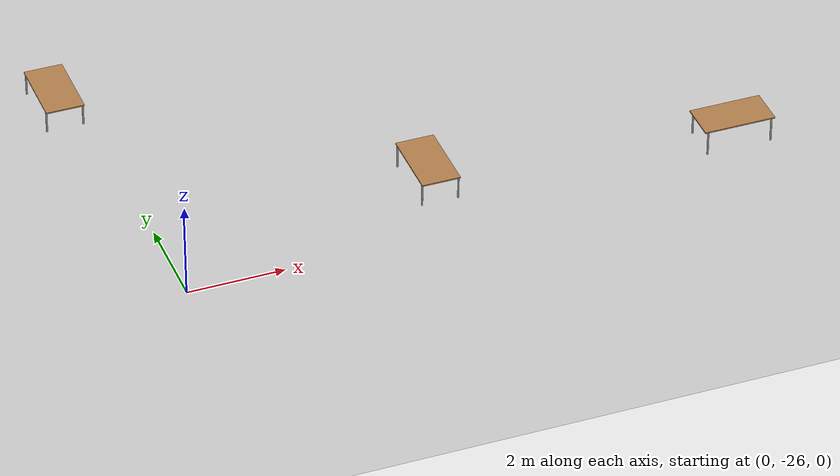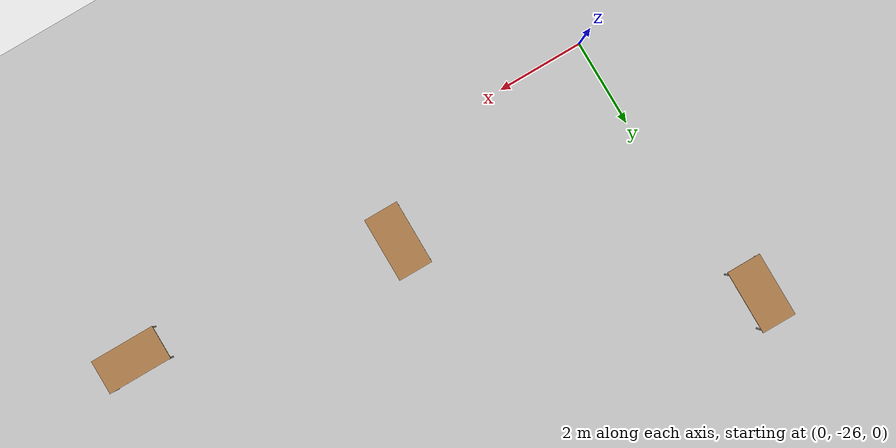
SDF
<sdf version="1.6">
 <world name="default">
  <model name="ground_plane">
   <static>1</static>
   <link name="link">
    <collision name="collision">
     <geometry><plane><normal>0 0 1</normal><size>100 100</size></plane></geometry>
     <surface>
      <contact><collide_bitmask>65535</collide_bitmask></contact>
      <friction><ode><mu>100</mu><mu2>50</mu2></ode></friction>
     </surface>
    </collision>
    <visual name="visual">
     <cast_shadows>0</cast_shadows>
     <geometry><plane><normal>0 0 1</normal><size>100 100</size></plane></geometry>
     <material>
      <script><uri>file://media/materials/scripts/gazebo.material</uri><name>Gazebo/Grey</name></script>
     </material>
    </visual>
   </link>
  </model>
  <model name="table_2">
   <static>1</static>
   <link name="link">
    <collision name="surface">
     <pose>0 0 1 0 -0 0</pose>
     <geometry><box><size>1.5 0.8 0.03</size></box></geometry>
     <surface><friction><ode><mu>0.6</mu><mu2>0.6</mu2></ode></friction></surface>
    </collision>
    <visual name="visual1">
     <pose>0 0 1 0 -0 0</pose>
     <geometry><box><size>1.5 0.8 0.03</size></box></geometry>
     <material>
      <script><uri>file://media/materials/scripts/gazebo.material</uri><name>Gazebo/Wood</name></script>
     </material>
    </visual>
    <collision name="front_left_leg">
     <pose>0.68 0.38 0.5 0 -0 0</pose>
     <geometry><cylinder><radius>0.02</radius><length>1</length></cylinder></geometry>
    </collision>
    <visual name="front_left_leg">
     <pose>0.68 0.38 0.5 0 -0 0</pose>
     <geometry><cylinder><radius>0.02</radius><length>1</length></cylinder></geometry>
     <material>
      <script><uri>file://media/materials/scripts/gazebo.material</uri><name>Gazebo/Grey</name></script>
     </material>
    </visual>
    <collision name="front_right_leg">
     <pose>0.68 -0.38 0.5 0 -0 0</pose>
     <geometry><cylinder><radius>0.02</radius><length>1</length></cylinder></geometry>
    </collision>
    <visual name="front_right_leg">
     <pose>0.68 -0.38 0.5 0 -0 0</pose>
     <geometry><cylinder><radius>0.02</radius><length>1</length></cylinder></geometry>
     <material>
      <script><uri>file://media/materials/scripts/gazebo.material</uri><name>Gazebo/Grey</name></script>
     </material>
    </visual>
    <collision name="back_right_leg">
     <pose>-0.68 -0.38 0.5 0 -0 0</pose>
     <geometry><cylinder><radius>0.02</radius><length>1</length></cylinder></geometry>
    </collision>
    <visual name="back_right_leg">
     <pose>-0.68 -0.38 0.5 0 -0 0</pose>
     <geometry><cylinder><radius>0.02</radius><length>1</length></cylinder></geometry>
     <material>
      <script><uri>file://media/materials/scripts/gazebo.material</uri><name>Gazebo/Grey</name></script>
     </material>
    </visual>
    <collision name="back_left_leg">
     <pose>-0.68 0.38 0.5 0 -0 0</pose>
     <geometry><cylinder><radius>0.02</radius><length>1</length></cylinder></geometry>
    </collision>
    <visual name="back_left_leg">
     <pose>-0.68 0.38 0.5 0 -0 0</pose>
     <geometry><cylinder><radius>0.02</radius><length>1</length></cylinder></geometry>
     <material>
      <script><uri>file://media/materials/scripts/gazebo.material</uri><name>Gazebo/Grey</name></script>
     </material>
    </visual>
   </link>
   <pose>-0.55322 -19.3772 -0.528018 0 0 -1.5708</pose>
  </model>
  <model name="table_4">
   <static>1</static>
   <link name="link">
    <collision name="surface">
     <pose>0 0 1 0 -0 0</pose>
     <geometry><box><size>1.5 0.8 0.03</size></box></geometry>
     <surface><friction><ode><mu>0.6</mu><mu2>0.6</mu2></ode></friction></surface>
    </collision>
    <visual name="visual1">
     <pose>0 0 1 0 -0 0</pose>
     <geometry><box><size>1.5 0.8 0.03</size></box></geometry>
     <material>
      <script><uri>file://media/materials/scripts/gazebo.material</uri><name>Gazebo/Wood</name></script>
     </material>
    </visual>
    <collision name="front_left_leg">
     <pose>0.68 0.38 0.5 0 -0 0</pose>
     <geometry><cylinder><radius>0.02</radius><length>1</length></cylinder></geometry>
    </collision>
    <visual name="front_left_leg">
     <pose>0.68 0.38 0.5 0 -0 0</pose>
     <geometry><cylinder><radius>0.02</radius><length>1</length></cylinder></geometry>
     <material>
      <script><uri>file://media/materials/scripts/gazebo.material</uri><name>Gazebo/Grey</name></script>
     </material>
    </visual>
    <collision name="front_right_leg">
     <pose>0.68 -0.38 0.5 0 -0 0</pose>
     <geometry><cylinder><radius>0.02</radius><length>1</length></cylinder></geometry>
    </collision>
    <visual name="front_right_leg">
     <pose>0.68 -0.38 0.5 0 -0 0</pose>
     <geometry><cylinder><radius>0.02</radius><length>1</length></cylinder></geometry>
     <material>
      <script><uri>file://media/materials/scripts/gazebo.material</uri><name>Gazebo/Grey</name></script>
     </material>
    </visual>
    <collision name="back_right_leg">
     <pose>-0.68 -0.38 0.5 0 -0 0</pose>
     <geometry><cylinder><radius>0.02</radius><length>1</length></cylinder></geometry>
    </collision>
    <visual name="back_right_leg">
     <pose>-0.68 -0.38 0.5 0 -0 0</pose>
     <geometry><cylinder><radius>0.02</radius><length>1</length></cylinder></geometry>
     <material>
      <script><uri>file://media/materials/scripts/gazebo.material</uri><name>Gazebo/Grey</name></script>
     </material>
    </visual>
    <collision name="back_left_leg">
     <pose>-0.68 0.38 0.5 0 -0 0</pose>
     <geometry><cylinder><radius>0.02</radius><length>1</length></cylinder></geometry>
    </collision>
    <visual name="back_left_leg">
     <pose>-0.68 0.38 0.5 0 -0 0</pose>
     <geometry><cylinder><radius>0.02</radius><length>1</length></cylinder></geometry>
     <material>
      <script><uri>file://media/materials/scripts/gazebo.material</uri><name>Gazebo/Grey</name></script>
     </material>
    </visual>
   </link>
   <pose>11.784 -24.9933 -0.47787 0 -0 0</pose>
  </model>
  <model name="table_5">
   <static>1</static>
   <link name="link">
    <collision name="surface">
     <pose>0 0 1 0 -0 0</pose>
     <geometry><box><size>1.5 0.8 0.03</size></box></geometry>
     <surface><friction><ode><mu>0.6</mu><mu2>0.6</mu2></ode></friction></surface>
    </collision>
    <visual name="visual1">
     <pose>0 0 1 0 -0 0</pose>
     <geometry><box><size>1.5 0.8 0.03</size></box></geometry>
     <material>
      <script><uri>file://media/materials/scripts/gazebo.material</uri><name>Gazebo/Wood</name></script>
     </material>
    </visual>
    <collision name="front_left_leg">
     <pose>0.68 0.38 0.5 0 -0 0</pose>
     <geometry><cylinder><radius>0.02</radius><length>1</length></cylinder></geometry>
    </collision>
    <visual name="front_left_leg">
     <pose>0.68 0.38 0.5 0 -0 0</pose>
     <geometry><cylinder><radius>0.02</radius><length>1</length></cylinder></geometry>
     <material>
      <script><uri>file://media/materials/scripts/gazebo.material</uri><name>Gazebo/Grey</name></script>
     </material>
    </visual>
    <collision name="front_right_leg">
     <pose>0.68 -0.38 0.5 0 -0 0</pose>
     <geometry><cylinder><radius>0.02</radius><length>1</length></cylinder></geometry>
    </collision>
    <visual name="front_right_leg">
     <pose>0.68 -0.38 0.5 0 -0 0</pose>
     <geometry><cylinder><radius>0.02</radius><length>1</length></cylinder></geometry>
     <material>
      <script><uri>file://media/materials/scripts/gazebo.material</uri><name>Gazebo/Grey</name></script>
     </material>
    </visual>
    <collision name="back_right_leg">
     <pose>-0.68 -0.38 0.5 0 -0 0</pose>
     <geometry><cylinder><radius>0.02</radius><length>1</length></cylinder></geometry>
    </collision>
    <visual name="back_right_leg">
     <pose>-0.68 -0.38 0.5 0 -0 0</pose>
     <geometry><cylinder><radius>0.02</radius><length>1</length></cylinder></geometry>
     <material>
      <script><uri>file://media/materials/scripts/gazebo.material</uri><name>Gazebo/Grey</name></script>
     </material>
    </visual>
    <collision name="back_left_leg">
     <pose>-0.68 0.38 0.5 0 -0 0</pose>
     <geometry><cylinder><radius>0.02</radius><length>1</length></cylinder></geometry>
    </collision>
    <visual name="back_left_leg">
     <pose>-0.68 0.38 0.5 0 -0 0</pose>
     <geometry><cylinder><radius>0.02</radius><length>1</length></cylinder></geometry>
     <material>
      <script><uri>file://media/materials/scripts/gazebo.material</uri><name>Gazebo/Grey</name></script>
     </material>
    </visual>
   </link>
   <pose>5.58429 -24.2877 -0.497834 0 0 -1.5708</pose>
  </model>
 </world>
</sdf>
